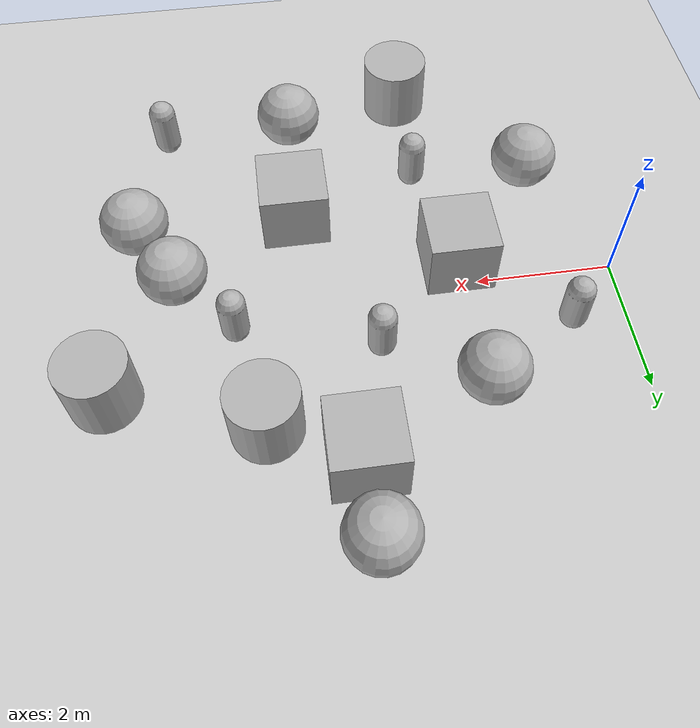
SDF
<sdf version='1.9'>
  <world name='empty'>
    <physics name='1ms' type='ignored'>
      <max_step_size>0.001</max_step_size>
      <real_time_factor>1</real_time_factor>
      <real_time_update_rate>1000</real_time_update_rate>
    </physics>
    <plugin name='gz::sim::systems::Physics' filename='gz-sim-physics-system'/>
    <plugin name='gz::sim::systems::UserCommands' filename='gz-sim-user-commands-system'/>
    <plugin name='gz::sim::systems::SceneBroadcaster' filename='gz-sim-scene-broadcaster-system'/>
    <plugin name='gz::sim::systems::Sensors' filename='gz-sim-sensors-system'>
      <render_engine>ogre2</render_engine>
    </plugin>
    <plugin name='gz::sim::systems::Contact' filename='gz-sim-contact-system'/>
    <gravity>0 0 -9.8</gravity>
    <magnetic_field>6e-06 2.3e-05 -4.2e-05</magnetic_field>
    <atmosphere type='adiabatic'/>
    <scene>
      <ambient>0.4 0.4 0.4 1</ambient>
      <background>0.7 0.7 0.7 1</background>
      <shadows>false</shadows>
    </scene>
    <model name='ground_plane'>
      <static>true</static>
      <link name='link'>
        <collision name='collision'>
          <geometry>
            <plane>
              <normal>0 0 1</normal>
              <size>100 100</size>
            </plane>
          </geometry>
          <surface>
            <friction>
              <ode/>
            </friction>
            <bounce/>
            <contact/>
          </surface>
        </collision>
        <visual name='visual'>
          <geometry>
            <plane>
              <normal>0 0 1</normal>
              <size>100 100</size>
            </plane>
          </geometry>
          <material>
            <ambient>0.8 0.8 0.8 1</ambient>
            <diffuse>0.8 0.8 0.8 1</diffuse>
            <specular>0.8 0.8 0.8 1</specular>
          </material>
        </visual>
        <pose>0 0 0 0 -0 0</pose>
        <inertial>
          <pose>0 0 0 0 -0 0</pose>
          <mass>1</mass>
          <inertia>
            <ixx>1</ixx>
            <ixy>0</ixy>
            <ixz>0</ixz>
            <iyy>1</iyy>
            <iyz>0</iyz>
            <izz>1</izz>
          </inertia>
        </inertial>
        <enable_wind>false</enable_wind>
      </link>
      <pose>0 0 0 0 -0 0</pose>
      <self_collide>false</self_collide>
    </model>
    <model name='capsule'>
      <pose>0.823682 0.859099 0.5 0 -0 0</pose>
      <link name='capsule_link'>
        <inertial>
          <inertia>
            <ixx>0.074153999999999998</ixx>
            <ixy>0</ixy>
            <ixz>0</ixz>
            <iyy>0.074153999999999998</iyy>
            <iyz>0</iyz>
            <izz>0.018769000000000001</izz>
          </inertia>
          <mass>1</mass>
          <pose>0 0 0 0 -0 0</pose>
        </inertial>
        <collision name='capsule_collision'>
          <geometry>
            <capsule>
              <radius>0.20000000000000001</radius>
              <length>0.59999999999999998</length>
            </capsule>
          </geometry>
          <surface>
            <friction>
              <ode/>
            </friction>
            <bounce/>
            <contact/>
          </surface>
        </collision>
        <visual name='capsule_visual'>
          <geometry>
            <capsule>
              <radius>0.20000000000000001</radius>
              <length>0.59999999999999998</length>
            </capsule>
          </geometry>
          <material>
            <ambient>0.3 0.3 0.3 1</ambient>
            <diffuse>0.7 0.7 0.7 1</diffuse>
            <specular>1 1 1 1</specular>
          </material>
        </visual>
        <pose>0 0 0 0 -0 0</pose>
        <enable_wind>false</enable_wind>
      </link>
      <static>false</static>
      <self_collide>false</self_collide>
    </model>
    <model name='box'>
      <pose>2.26576 -0.377741 0.5 0 0 -0</pose>
      <link name='box_link'>
        <inertial>
          <inertia>
            <ixx>0.16666</ixx>
            <ixy>0</ixy>
            <ixz>0</ixz>
            <iyy>0.16666</iyy>
            <iyz>0</iyz>
            <izz>0.16666</izz>
          </inertia>
          <mass>1</mass>
          <pose>0 0 0 0 -0 0</pose>
        </inertial>
        <collision name='box_collision'>
          <geometry>
            <box>
              <size>1 1 1</size>
            </box>
          </geometry>
          <surface>
            <friction>
              <ode/>
            </friction>
            <bounce/>
            <contact/>
          </surface>
        </collision>
        <visual name='box_visual'>
          <geometry>
            <box>
              <size>1 1 1</size>
            </box>
          </geometry>
          <material>
            <ambient>0.3 0.3 0.3 1</ambient>
            <diffuse>0.7 0.7 0.7 1</diffuse>
            <specular>1 1 1 1</specular>
          </material>
        </visual>
        <pose>0 0 0 0 -0 0</pose>
        <enable_wind>false</enable_wind>
      </link>
      <static>false</static>
      <self_collide>false</self_collide>
    </model>
    <model name='sphere'>
      <pose>2.18378 1.70821 0.5 0 -0 0</pose>
      <link name='sphere_link'>
        <inertial>
          <inertia>
            <ixx>0.10000000000000001</ixx>
            <ixy>0</ixy>
            <ixz>0</ixz>
            <iyy>0.10000000000000001</iyy>
            <iyz>0</iyz>
            <izz>0.10000000000000001</izz>
          </inertia>
          <mass>1</mass>
          <pose>0 0 0 0 -0 0</pose>
        </inertial>
        <collision name='sphere_collision'>
          <geometry>
            <sphere>
              <radius>0.5</radius>
            </sphere>
          </geometry>
          <surface>
            <friction>
              <ode/>
            </friction>
            <bounce/>
            <contact/>
          </surface>
        </collision>
        <visual name='sphere_visual'>
          <geometry>
            <sphere>
              <radius>0.5</radius>
            </sphere>
          </geometry>
          <material>
            <ambient>0.3 0.3 0.3 1</ambient>
            <diffuse>0.7 0.7 0.7 1</diffuse>
            <specular>1 1 1 1</specular>
          </material>
        </visual>
        <pose>0 0 0 0 -0 0</pose>
        <enable_wind>false</enable_wind>
      </link>
      <static>false</static>
      <self_collide>false</self_collide>
    </model>
    <model name='capsule_0'>
      <pose>3.57193 0.93567 0.5 0 -0 0</pose>
      <link name='capsule_link'>
        <inertial>
          <inertia>
            <ixx>0.074153999999999998</ixx>
            <ixy>0</ixy>
            <ixz>0</ixz>
            <iyy>0.074153999999999998</iyy>
            <iyz>0</iyz>
            <izz>0.018769000000000001</izz>
          </inertia>
          <mass>1</mass>
          <pose>0 0 0 0 -0 0</pose>
        </inertial>
        <collision name='capsule_collision'>
          <geometry>
            <capsule>
              <radius>0.20000000000000001</radius>
              <length>0.59999999999999998</length>
            </capsule>
          </geometry>
          <surface>
            <friction>
              <ode/>
            </friction>
            <bounce/>
            <contact/>
          </surface>
        </collision>
        <visual name='capsule_visual'>
          <geometry>
            <capsule>
              <radius>0.20000000000000001</radius>
              <length>0.59999999999999998</length>
            </capsule>
          </geometry>
          <material>
            <ambient>0.3 0.3 0.3 1</ambient>
            <diffuse>0.7 0.7 0.7 1</diffuse>
            <specular>1 1 1 1</specular>
          </material>
        </visual>
        <pose>0 0 0 0 -0 0</pose>
        <enable_wind>false</enable_wind>
      </link>
      <static>false</static>
      <self_collide>false</self_collide>
    </model>
    <model name='box_0'>
      <pose>4.02337 2.57819 0.5 0 0 -0</pose>
      <link name='box_link'>
        <inertial>
          <inertia>
            <ixx>0.16666</ixx>
            <ixy>0</ixy>
            <ixz>0</ixz>
            <iyy>0.16666</iyy>
            <iyz>0</iyz>
            <izz>0.16666</izz>
          </inertia>
          <mass>1</mass>
          <pose>0 0 0 0 -0 0</pose>
        </inertial>
        <collision name='box_collision'>
          <geometry>
            <box>
              <size>1 1 1</size>
            </box>
          </geometry>
          <surface>
            <friction>
              <ode/>
            </friction>
            <bounce/>
            <contact/>
          </surface>
        </collision>
        <visual name='box_visual'>
          <geometry>
            <box>
              <size>1 1 1</size>
            </box>
          </geometry>
          <material>
            <ambient>0.3 0.3 0.3 1</ambient>
            <diffuse>0.7 0.7 0.7 1</diffuse>
            <specular>1 1 1 1</specular>
          </material>
        </visual>
        <pose>0 0 0 0 -0 0</pose>
        <enable_wind>false</enable_wind>
      </link>
      <static>false</static>
      <self_collide>false</self_collide>
    </model>
    <model name='sphere_0'>
      <pose>3.98626 3.68948 0.5 0 -0 0</pose>
      <link name='sphere_link'>
        <inertial>
          <inertia>
            <ixx>0.10000000000000001</ixx>
            <ixy>0</ixy>
            <ixz>0</ixz>
            <iyy>0.10000000000000001</iyy>
            <iyz>0</iyz>
            <izz>0.10000000000000001</izz>
          </inertia>
          <mass>1</mass>
          <pose>0 0 0 0 -0 0</pose>
        </inertial>
        <collision name='sphere_collision'>
          <geometry>
            <sphere>
              <radius>0.5</radius>
            </sphere>
          </geometry>
          <surface>
            <friction>
              <ode/>
            </friction>
            <bounce/>
            <contact/>
          </surface>
        </collision>
        <visual name='sphere_visual'>
          <geometry>
            <sphere>
              <radius>0.5</radius>
            </sphere>
          </geometry>
          <material>
            <ambient>0.3 0.3 0.3 1</ambient>
            <diffuse>0.7 0.7 0.7 1</diffuse>
            <specular>1 1 1 1</specular>
          </material>
        </visual>
        <pose>0 0 0 0 -0 0</pose>
        <enable_wind>false</enable_wind>
      </link>
      <static>false</static>
      <self_collide>false</self_collide>
    </model>
    <model name='cylinder'>
      <pose>5.24255 1.94758 0.499999 0 0 0</pose>
      <link name='cylinder_link'>
        <inertial>
          <inertia>
            <ixx>0.14580000000000001</ixx>
            <ixy>0</ixy>
            <ixz>0</ixz>
            <iyy>0.14580000000000001</iyy>
            <iyz>0</iyz>
            <izz>0.125</izz>
          </inertia>
          <mass>1</mass>
          <pose>0 0 0 0 -0 0</pose>
        </inertial>
        <collision name='cylinder_collision'>
          <geometry>
            <cylinder>
              <radius>0.5</radius>
              <length>1</length>
            </cylinder>
          </geometry>
          <surface>
            <friction>
              <ode/>
            </friction>
            <bounce/>
            <contact/>
          </surface>
        </collision>
        <visual name='cylinder_visual'>
          <geometry>
            <cylinder>
              <radius>0.5</radius>
              <length>1</length>
            </cylinder>
          </geometry>
          <material>
            <ambient>0.3 0.3 0.3 1</ambient>
            <diffuse>0.7 0.7 0.7 1</diffuse>
            <specular>1 1 1 1</specular>
          </material>
        </visual>
        <pose>0 0 0 0 -0 0</pose>
        <enable_wind>false</enable_wind>
      </link>
      <static>false</static>
      <self_collide>false</self_collide>
    </model>
    <model name='capsule_1'>
      <pose>5.56793 0.437664 0.5 0 -0 0</pose>
      <link name='capsule_link'>
        <inertial>
          <inertia>
            <ixx>0.074153999999999998</ixx>
            <ixy>0</ixy>
            <ixz>0</ixz>
            <iyy>0.074153999999999998</iyy>
            <iyz>0</iyz>
            <izz>0.018769000000000001</izz>
          </inertia>
          <mass>1</mass>
          <pose>0 0 0 0 -0 0</pose>
        </inertial>
        <collision name='capsule_collision'>
          <geometry>
            <capsule>
              <radius>0.20000000000000001</radius>
              <length>0.59999999999999998</length>
            </capsule>
          </geometry>
          <surface>
            <friction>
              <ode/>
            </friction>
            <bounce/>
            <contact/>
          </surface>
        </collision>
        <visual name='capsule_visual'>
          <geometry>
            <capsule>
              <radius>0.20000000000000001</radius>
              <length>0.59999999999999998</length>
            </capsule>
          </geometry>
          <material>
            <ambient>0.3 0.3 0.3 1</ambient>
            <diffuse>0.7 0.7 0.7 1</diffuse>
            <specular>1 1 1 1</specular>
          </material>
        </visual>
        <pose>0 0 0 0 -0 0</pose>
        <enable_wind>false</enable_wind>
      </link>
      <static>false</static>
      <self_collide>false</self_collide>
    </model>
    <model name='sphere_1'>
      <pose>0.9024 -1.96163 0.5 0 -0 0</pose>
      <link name='sphere_link'>
        <inertial>
          <inertia>
            <ixx>0.10000000000000001</ixx>
            <ixy>0</ixy>
            <ixz>0</ixz>
            <iyy>0.10000000000000001</iyy>
            <iyz>0</iyz>
            <izz>0.10000000000000001</izz>
          </inertia>
          <mass>1</mass>
          <pose>0 0 0 0 -0 0</pose>
        </inertial>
        <collision name='sphere_collision'>
          <geometry>
            <sphere>
              <radius>0.5</radius>
            </sphere>
          </geometry>
          <surface>
            <friction>
              <ode/>
            </friction>
            <bounce/>
            <contact/>
          </surface>
        </collision>
        <visual name='sphere_visual'>
          <geometry>
            <sphere>
              <radius>0.5</radius>
            </sphere>
          </geometry>
          <material>
            <ambient>0.3 0.3 0.3 1</ambient>
            <diffuse>0.7 0.7 0.7 1</diffuse>
            <specular>1 1 1 1</specular>
          </material>
        </visual>
        <pose>0 0 0 0 -0 0</pose>
        <enable_wind>false</enable_wind>
      </link>
      <static>false</static>
      <self_collide>false</self_collide>
    </model>
    <model name='capsule_2'>
      <pose>2.65619 -2.1173 0.5 0 -0 0</pose>
      <link name='capsule_link'>
        <inertial>
          <inertia>
            <ixx>0.074153999999999998</ixx>
            <ixy>0</ixy>
            <ixz>0</ixz>
            <iyy>0.074153999999999998</iyy>
            <iyz>0</iyz>
            <izz>0.018769000000000001</izz>
          </inertia>
          <mass>1</mass>
          <pose>0 0 0 0 -0 0</pose>
        </inertial>
        <collision name='capsule_collision'>
          <geometry>
            <capsule>
              <radius>0.20000000000000001</radius>
              <length>0.59999999999999998</length>
            </capsule>
          </geometry>
          <surface>
            <friction>
              <ode/>
            </friction>
            <bounce/>
            <contact/>
          </surface>
        </collision>
        <visual name='capsule_visual'>
          <geometry>
            <capsule>
              <radius>0.20000000000000001</radius>
              <length>0.59999999999999998</length>
            </capsule>
          </geometry>
          <material>
            <ambient>0.3 0.3 0.3 1</ambient>
            <diffuse>0.7 0.7 0.7 1</diffuse>
            <specular>1 1 1 1</specular>
          </material>
        </visual>
        <pose>0 0 0 0 -0 0</pose>
        <enable_wind>false</enable_wind>
      </link>
      <static>false</static>
      <self_collide>false</self_collide>
    </model>
    <model name='box_1'>
      <pose>4.56618 -1.54732 0.5 -0 0 -0</pose>
      <link name='box_link'>
        <inertial>
          <inertia>
            <ixx>0.16666</ixx>
            <ixy>0</ixy>
            <ixz>0</ixz>
            <iyy>0.16666</iyy>
            <iyz>0</iyz>
            <izz>0.16666</izz>
          </inertia>
          <mass>1</mass>
          <pose>0 0 0 0 -0 0</pose>
        </inertial>
        <collision name='box_collision'>
          <geometry>
            <box>
              <size>1 1 1</size>
            </box>
          </geometry>
          <surface>
            <friction>
              <ode/>
            </friction>
            <bounce/>
            <contact/>
          </surface>
        </collision>
        <visual name='box_visual'>
          <geometry>
            <box>
              <size>1 1 1</size>
            </box>
          </geometry>
          <material>
            <ambient>0.3 0.3 0.3 1</ambient>
            <diffuse>0.7 0.7 0.7 1</diffuse>
            <specular>1 1 1 1</specular>
          </material>
        </visual>
        <pose>0 0 0 0 -0 0</pose>
        <enable_wind>false</enable_wind>
      </link>
      <static>false</static>
      <self_collide>false</self_collide>
    </model>
    <model name='cylinder_0'>
      <pose>2.66115 -3.85495 0.499999 -0 -0 0</pose>
      <link name='cylinder_link'>
        <inertial>
          <inertia>
            <ixx>0.14580000000000001</ixx>
            <ixy>0</ixy>
            <ixz>0</ixz>
            <iyy>0.14580000000000001</iyy>
            <iyz>0</iyz>
            <izz>0.125</izz>
          </inertia>
          <mass>1</mass>
          <pose>0 0 0 0 -0 0</pose>
        </inertial>
        <collision name='cylinder_collision'>
          <geometry>
            <cylinder>
              <radius>0.5</radius>
              <length>1</length>
            </cylinder>
          </geometry>
          <surface>
            <friction>
              <ode/>
            </friction>
            <bounce/>
            <contact/>
          </surface>
        </collision>
        <visual name='cylinder_visual'>
          <geometry>
            <cylinder>
              <radius>0.5</radius>
              <length>1</length>
            </cylinder>
          </geometry>
          <material>
            <ambient>0.3 0.3 0.3 1</ambient>
            <diffuse>0.7 0.7 0.7 1</diffuse>
            <specular>1 1 1 1</specular>
          </material>
        </visual>
        <pose>0 0 0 0 -0 0</pose>
        <enable_wind>false</enable_wind>
      </link>
      <static>false</static>
      <self_collide>false</self_collide>
    </model>
    <model name='sphere_2'>
      <pose>6.39448 -0.446104 0.5 0 -0 0</pose>
      <link name='sphere_link'>
        <inertial>
          <inertia>
            <ixx>0.10000000000000001</ixx>
            <ixy>0</ixy>
            <ixz>0</ixz>
            <iyy>0.10000000000000001</iyy>
            <iyz>0</iyz>
            <izz>0.10000000000000001</izz>
          </inertia>
          <mass>1</mass>
          <pose>0 0 0 0 -0 0</pose>
        </inertial>
        <collision name='sphere_collision'>
          <geometry>
            <sphere>
              <radius>0.5</radius>
            </sphere>
          </geometry>
          <surface>
            <friction>
              <ode/>
            </friction>
            <bounce/>
            <contact/>
          </surface>
        </collision>
        <visual name='sphere_visual'>
          <geometry>
            <sphere>
              <radius>0.5</radius>
            </sphere>
          </geometry>
          <material>
            <ambient>0.3 0.3 0.3 1</ambient>
            <diffuse>0.7 0.7 0.7 1</diffuse>
            <specular>1 1 1 1</specular>
          </material>
        </visual>
        <pose>0 0 0 0 -0 0</pose>
        <enable_wind>false</enable_wind>
      </link>
      <static>false</static>
      <self_collide>false</self_collide>
    </model>
    <model name='sphere_3'>
      <pose>6.94228 -1.42311 0.5 0 -0 0</pose>
      <link name='sphere_link'>
        <inertial>
          <inertia>
            <ixx>0.10000000000000001</ixx>
            <ixy>0</ixy>
            <ixz>0</ixz>
            <iyy>0.10000000000000001</iyy>
            <iyz>0</iyz>
            <izz>0.10000000000000001</izz>
          </inertia>
          <mass>1</mass>
          <pose>0 0 0 0 -0 0</pose>
        </inertial>
        <collision name='sphere_collision'>
          <geometry>
            <sphere>
              <radius>0.5</radius>
            </sphere>
          </geometry>
          <surface>
            <friction>
              <ode/>
            </friction>
            <bounce/>
            <contact/>
          </surface>
        </collision>
        <visual name='sphere_visual'>
          <geometry>
            <sphere>
              <radius>0.5</radius>
            </sphere>
          </geometry>
          <material>
            <ambient>0.3 0.3 0.3 1</ambient>
            <diffuse>0.7 0.7 0.7 1</diffuse>
            <specular>1 1 1 1</specular>
          </material>
        </visual>
        <pose>0 0 0 0 -0 0</pose>
        <enable_wind>false</enable_wind>
      </link>
      <static>false</static>
      <self_collide>false</self_collide>
    </model>
    <model name='cylinder_1'>
      <pose>7.36611 1.23268 0.499999 0 -0 0</pose>
      <link name='cylinder_link'>
        <inertial>
          <inertia>
            <ixx>0.14580000000000001</ixx>
            <ixy>0</ixy>
            <ixz>0</ixz>
            <iyy>0.14580000000000001</iyy>
            <iyz>0</iyz>
            <izz>0.125</izz>
          </inertia>
          <mass>1</mass>
          <pose>0 0 0 0 -0 0</pose>
        </inertial>
        <collision name='cylinder_collision'>
          <geometry>
            <cylinder>
              <radius>0.5</radius>
              <length>1</length>
            </cylinder>
          </geometry>
          <surface>
            <friction>
              <ode/>
            </friction>
            <bounce/>
            <contact/>
          </surface>
        </collision>
        <visual name='cylinder_visual'>
          <geometry>
            <cylinder>
              <radius>0.5</radius>
              <length>1</length>
            </cylinder>
          </geometry>
          <material>
            <ambient>0.3 0.3 0.3 1</ambient>
            <diffuse>0.7 0.7 0.7 1</diffuse>
            <specular>1 1 1 1</specular>
          </material>
        </visual>
        <pose>0 0 0 0 -0 0</pose>
        <enable_wind>false</enable_wind>
      </link>
      <static>false</static>
      <self_collide>false</self_collide>
    </model>
    <model name='sphere_4'>
      <pose>4.4858 -3.36264 0.5 0 -0 0</pose>
      <link name='sphere_link'>
        <inertial>
          <inertia>
            <ixx>0.10000000000000001</ixx>
            <ixy>0</ixy>
            <ixz>0</ixz>
            <iyy>0.10000000000000001</iyy>
            <iyz>0</iyz>
            <izz>0.10000000000000001</izz>
          </inertia>
          <mass>1</mass>
          <pose>0 0 0 0 -0 0</pose>
        </inertial>
        <collision name='sphere_collision'>
          <geometry>
            <sphere>
              <radius>0.5</radius>
            </sphere>
          </geometry>
          <surface>
            <friction>
              <ode/>
            </friction>
            <bounce/>
            <contact/>
          </surface>
        </collision>
        <visual name='sphere_visual'>
          <geometry>
            <sphere>
              <radius>0.5</radius>
            </sphere>
          </geometry>
          <material>
            <ambient>0.3 0.3 0.3 1</ambient>
            <diffuse>0.7 0.7 0.7 1</diffuse>
            <specular>1 1 1 1</specular>
          </material>
        </visual>
        <pose>0 0 0 0 -0 0</pose>
        <enable_wind>false</enable_wind>
      </link>
      <static>false</static>
      <self_collide>false</self_collide>
    </model>
    <model name='capsule_3'>
      <pose>6.47686 -3.33947 0.5 0 -0 0</pose>
      <link name='capsule_link'>
        <inertial>
          <inertia>
            <ixx>0.074153999999999998</ixx>
            <ixy>0</ixy>
            <ixz>0</ixz>
            <iyy>0.074153999999999998</iyy>
            <iyz>0</iyz>
            <izz>0.018769000000000001</izz>
          </inertia>
          <mass>1</mass>
          <pose>0 0 0 0 -0 0</pose>
        </inertial>
        <collision name='capsule_collision'>
          <geometry>
            <capsule>
              <radius>0.20000000000000001</radius>
              <length>0.59999999999999998</length>
            </capsule>
          </geometry>
          <surface>
            <friction>
              <ode/>
            </friction>
            <bounce/>
            <contact/>
          </surface>
        </collision>
        <visual name='capsule_visual'>
          <geometry>
            <capsule>
              <radius>0.20000000000000001</radius>
              <length>0.59999999999999998</length>
            </capsule>
          </geometry>
          <material>
            <ambient>0.3 0.3 0.3 1</ambient>
            <diffuse>0.7 0.7 0.7 1</diffuse>
            <specular>1 1 1 1</specular>
          </material>
        </visual>
        <pose>0 0 0 0 -0 0</pose>
        <enable_wind>false</enable_wind>
      </link>
      <static>false</static>
      <self_collide>false</self_collide>
    </model>
    <light name='sun' type='directional'>
      <pose>0 0 10 0 -0 0</pose>
      <cast_shadows>false</cast_shadows>
      <intensity>1</intensity>
      <direction>-0.5 0.1 -0.9</direction>
      <diffuse>0.8 0.8 0.8 1</diffuse>
      <specular>0.2 0.2 0.2 1</specular>
      <attenuation>
        <range>1000</range>
        <linear>0.01</linear>
        <constant>0.90000000000000002</constant>
        <quadratic>0.001</quadratic>
      </attenuation>
      <spot>
        <inner_angle>0</inner_angle>
        <outer_angle>0</outer_angle>
        <falloff>0</falloff>
      </spot>
    </light>
  </world>
</sdf>
